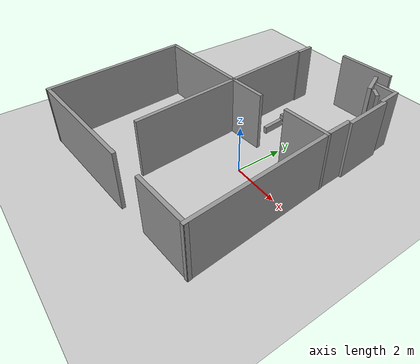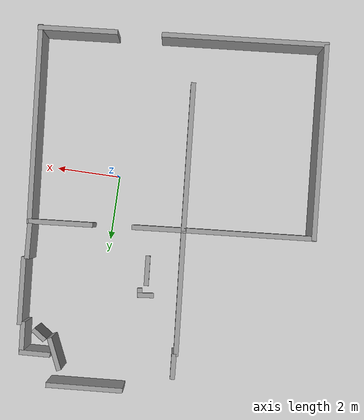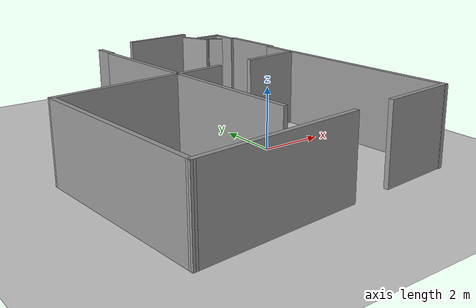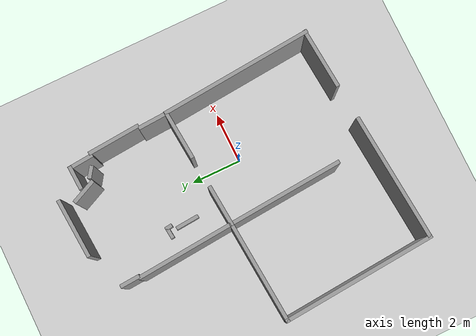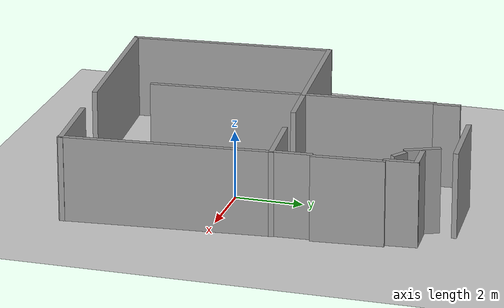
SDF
<sdf version="1.7">
 <world name="default">
  <light name="sun" type="directional">
   <pose>0 0 10 0 -0 0</pose>
   <diffuse>0.8 0.8 0.8 1</diffuse>
   <specular>0.2 0.2 0.2 1</specular>
   <attenuation>
    <range>1000</range>
    <constant>0.9</constant>
    <linear>0.01</linear>
    <quadratic>0.001</quadratic>
   </attenuation>
   <direction>-0.5 0.1 -0.9</direction>
   <spot><inner_angle>0</inner_angle><outer_angle>0</outer_angle><falloff>0</falloff></spot>
  </light>
  <model name="ground_plane">
   <static>1</static>
   <link name="link">
    <collision name="collision">
     <geometry><plane><normal>0 0 1</normal><size>100 100</size></plane></geometry>
     <surface>
      <contact><collide_bitmask>65535</collide_bitmask></contact>
      <friction><ode><mu>100</mu><mu2>50</mu2></ode></friction>
     </surface>
    </collision>
    <visual name="visual">
     <cast_shadows>0</cast_shadows>
     <geometry><plane><normal>0 0 1</normal><size>100 100</size></plane></geometry>
     <material>
      <script><uri>file://media/materials/scripts/gazebo.material</uri><name>Gazebo/Grey</name></script>
     </material>
    </visual>
   </link>
  </model>
  <gravity>0 0 -9.8</gravity>
  <magnetic_field>6e-06 2.3e-05 -4.2e-05</magnetic_field>
  <atmosphere type="adiabatic"/>
  <physics type="ode">
   <max_step_size>0.001</max_step_size>
   <real_time_factor>1</real_time_factor>
   <real_time_update_rate>1000</real_time_update_rate>
  </physics>
  <scene><ambient>0.4 0.4 0.4 1</ambient><background>0.7 0.7 0.7 1</background><shadows>1</shadows></scene>
  <spherical_coordinates>
   <surface_model>EARTH_WGS84</surface_model>
   <latitude_deg>0</latitude_deg>
   <longitude_deg>0</longitude_deg>
   <elevation>0</elevation>
   <heading_deg>0</heading_deg>
  </spherical_coordinates>
  <model name="clf-robocup-sim">
   <link name="Wall_0">
    <pose>0.117126 3.22511 0 0 -0 0.064986</pose>
    <visual name="Wall_0_Visual">
     <pose>0 0 1.25 0 -0 0</pose>
     <geometry><box><size>2.36263 0.15 2.5</size></box></geometry>
     <material>
      <script><uri>file://media/materials/scripts/gazebo.material</uri><name>Gazebo/Grey</name></script>
      <ambient>1 1 1 1</ambient>
      <shader type="pixel"/>
     </material>
     <meta><layer>0</layer></meta>
    </visual>
    <collision name="Wall_0_Collision">
     <pose>0 0 1.25 0 -0 0</pose>
     <geometry><box><size>2.36263 0.15 2.5</size></box></geometry>
     <surface>
      <friction>
       <ode><mu>1</mu><mu2>1</mu2><fdir1>0 0 0</fdir1><slip1>0</slip1><slip2>0</slip2></ode>
       <torsional>
        <coefficient>1</coefficient>
        <patch_radius>0</patch_radius>
        <surface_radius>0</surface_radius>
        <use_patch_radius>1</use_patch_radius>
        <ode><slip>0</slip></ode>
       </torsional>
      </friction>
      <bounce><restitution_coefficient>0</restitution_coefficient><threshold>1e+06</threshold></bounce>
      <contact>
       <collide_without_contact>0</collide_without_contact>
       <collide_without_contact_bitmask>1</collide_without_contact_bitmask>
       <collide_bitmask>1</collide_bitmask>
       <ode>
        <soft_cfm>0</soft_cfm>
        <soft_erp>0.2</soft_erp>
        <kp>1e+13</kp>
        <kd>1</kd>
        <max_vel>0.01</max_vel>
        <min_depth>0</min_depth>
       </ode>
       <bullet>
        <split_impulse>1</split_impulse>
        <split_impulse_penetration_threshold>-0.01</split_impulse_penetration_threshold>
        <soft_cfm>0</soft_cfm>
        <soft_erp>0.2</soft_erp>
        <kp>1e+13</kp>
        <kd>1</kd>
       </bullet>
      </contact>
     </surface>
    </collision>
   </link>
   <link name="Wall_12">
    <pose>1.72111 1.81473 0 0 -0 2.53783</pose>
    <visual name="Wall_12_Visual">
     <pose>0 0 1.25 0 -0 0</pose>
     <geometry><box><size>0.490134 0.15 2.5</size></box></geometry>
     <material>
      <script><uri>file://media/materials/scripts/gazebo.material</uri><name>Gazebo/Grey</name></script>
      <ambient>1 1 1 1</ambient>
      <shader type="pixel"/>
     </material>
     <meta><layer>0</layer></meta>
    </visual>
    <collision name="Wall_12_Collision">
     <pose>0 0 1.25 0 -0 0</pose>
     <geometry><box><size>0.490134 0.15 2.5</size></box></geometry>
     <surface>
      <friction>
       <ode><mu>1</mu><mu2>1</mu2><fdir1>0 0 0</fdir1><slip1>0</slip1><slip2>0</slip2></ode>
       <torsional>
        <coefficient>1</coefficient>
        <patch_radius>0</patch_radius>
        <surface_radius>0</surface_radius>
        <use_patch_radius>1</use_patch_radius>
        <ode><slip>0</slip></ode>
       </torsional>
      </friction>
      <bounce><restitution_coefficient>0</restitution_coefficient><threshold>1e+06</threshold></bounce>
      <contact>
       <collide_without_contact>0</collide_without_contact>
       <collide_without_contact_bitmask>1</collide_without_contact_bitmask>
       <collide_bitmask>1</collide_bitmask>
       <ode>
        <soft_cfm>0</soft_cfm>
        <soft_erp>0.2</soft_erp>
        <kp>1e+13</kp>
        <kd>1</kd>
        <max_vel>0.01</max_vel>
        <min_depth>0</min_depth>
       </ode>
       <bullet>
        <split_impulse>1</split_impulse>
        <split_impulse_penetration_threshold>-0.01</split_impulse_penetration_threshold>
        <soft_cfm>0</soft_cfm>
        <soft_erp>0.2</soft_erp>
        <kp>1e+13</kp>
        <kd>1</kd>
       </bullet>
      </contact>
     </surface>
    </collision>
   </link>
   <link name="Wall_15">
    <pose>1.77147 2.39865 0 0 -0 0.047234</pose>
    <visual name="Wall_15_Visual">
     <pose>0 0 1.25 0 -0 0</pose>
     <geometry><box><size>0.955272 0.15 2.5</size></box></geometry>
     <material>
      <script><uri>file://media/materials/scripts/gazebo.material</uri><name>Gazebo/Grey</name></script>
      <ambient>1 1 1 1</ambient>
      <shader type="pixel"/>
     </material>
     <meta><layer>0</layer></meta>
    </visual>
    <collision name="Wall_15_Collision">
     <pose>0 0 1.25 0 -0 0</pose>
     <geometry><box><size>0.955272 0.15 2.5</size></box></geometry>
     <surface>
      <friction>
       <ode><mu>1</mu><mu2>1</mu2><fdir1>0 0 0</fdir1><slip1>0</slip1><slip2>0</slip2></ode>
       <torsional>
        <coefficient>1</coefficient>
        <patch_radius>0</patch_radius>
        <surface_radius>0</surface_radius>
        <use_patch_radius>1</use_patch_radius>
        <ode><slip>0</slip></ode>
       </torsional>
      </friction>
      <bounce><restitution_coefficient>0</restitution_coefficient><threshold>1e+06</threshold></bounce>
      <contact>
       <collide_without_contact>0</collide_without_contact>
       <collide_without_contact_bitmask>1</collide_without_contact_bitmask>
       <collide_bitmask>1</collide_bitmask>
       <ode>
        <soft_cfm>0</soft_cfm>
        <soft_erp>0.2</soft_erp>
        <kp>1e+13</kp>
        <kd>1</kd>
        <max_vel>0.01</max_vel>
        <min_depth>0</min_depth>
       </ode>
       <bullet>
        <split_impulse>1</split_impulse>
        <split_impulse_penetration_threshold>-0.01</split_impulse_penetration_threshold>
        <soft_cfm>0</soft_cfm>
        <soft_erp>0.2</soft_erp>
        <kp>1e+13</kp>
        <kd>1</kd>
       </bullet>
      </contact>
     </surface>
    </collision>
   </link>
   <link name="Wall_16">
    <pose>2.21901 1.98813 0 0 0 -1.48312</pose>
    <visual name="Wall_16_Visual">
     <pose>0 0 1.25 0 -0 0</pose>
     <geometry><box><size>1.01237 0.15 2.5</size></box></geometry>
     <material>
      <script><uri>file://media/materials/scripts/gazebo.material</uri><name>Gazebo/Grey</name></script>
      <ambient>1 1 1 1</ambient>
      <shader type="pixel"/>
     </material>
     <meta><layer>0</layer></meta>
    </visual>
    <collision name="Wall_16_Collision">
     <pose>0 0 1.25 0 -0 0</pose>
     <geometry><box><size>1.01237 0.15 2.5</size></box></geometry>
     <surface>
      <friction>
       <ode><mu>1</mu><mu2>1</mu2><fdir1>0 0 0</fdir1><slip1>0</slip1><slip2>0</slip2></ode>
       <torsional>
        <coefficient>1</coefficient>
        <patch_radius>0</patch_radius>
        <surface_radius>0</surface_radius>
        <use_patch_radius>1</use_patch_radius>
        <ode><slip>0</slip></ode>
       </torsional>
      </friction>
      <bounce><restitution_coefficient>0</restitution_coefficient><threshold>1e+06</threshold></bounce>
      <contact>
       <collide_without_contact>0</collide_without_contact>
       <collide_without_contact_bitmask>1</collide_without_contact_bitmask>
       <collide_bitmask>1</collide_bitmask>
       <ode>
        <soft_cfm>0</soft_cfm>
        <soft_erp>0.2</soft_erp>
        <kp>1e+13</kp>
        <kd>1</kd>
        <max_vel>0.01</max_vel>
        <min_depth>0</min_depth>
       </ode>
       <bullet>
        <split_impulse>1</split_impulse>
        <split_impulse_penetration_threshold>-0.01</split_impulse_penetration_threshold>
        <soft_cfm>0</soft_cfm>
        <soft_erp>0.2</soft_erp>
        <kp>1e+13</kp>
        <kd>1</kd>
       </bullet>
      </contact>
     </surface>
    </collision>
   </link>
   <link name="Wall_20">
    <pose>2.4415 0.548053 0 0 -0 1.64929</pose>
    <visual name="Wall_20_Visual">
     <pose>0 0 1.25 0 -0 0</pose>
     <geometry><box><size>2.08962 0.15 2.5</size></box></geometry>
     <material>
      <script><uri>file://media/materials/scripts/gazebo.material</uri><name>Gazebo/Grey</name></script>
      <ambient>1 1 1 1</ambient>
      <shader type="pixel"/>
     </material>
     <meta><layer>0</layer></meta>
    </visual>
    <collision name="Wall_20_Collision">
     <pose>0 0 1.25 0 -0 0</pose>
     <geometry><box><size>2.08962 0.15 2.5</size></box></geometry>
     <surface>
      <friction>
       <ode><mu>1</mu><mu2>1</mu2><fdir1>0 0 0</fdir1><slip1>0</slip1><slip2>0</slip2></ode>
       <torsional>
        <coefficient>1</coefficient>
        <patch_radius>0</patch_radius>
        <surface_radius>0</surface_radius>
        <use_patch_radius>1</use_patch_radius>
        <ode><slip>0</slip></ode>
       </torsional>
      </friction>
      <bounce><restitution_coefficient>0</restitution_coefficient><threshold>1e+06</threshold></bounce>
      <contact>
       <collide_without_contact>0</collide_without_contact>
       <collide_without_contact_bitmask>1</collide_without_contact_bitmask>
       <collide_bitmask>1</collide_bitmask>
       <ode>
        <soft_cfm>0</soft_cfm>
        <soft_erp>0.2</soft_erp>
        <kp>1e+13</kp>
        <kd>1</kd>
        <max_vel>0.01</max_vel>
        <min_depth>0</min_depth>
       </ode>
       <bullet>
        <split_impulse>1</split_impulse>
        <split_impulse_penetration_threshold>-0.01</split_impulse_penetration_threshold>
        <soft_cfm>0</soft_cfm>
        <soft_erp>0.2</soft_erp>
        <kp>1e+13</kp>
        <kd>1</kd>
       </bullet>
      </contact>
     </surface>
    </collision>
   </link>
   <link name="Wall_23">
    <pose>2.45364 -0.992646 0 0 -0 1.62579</pose>
    <visual name="Wall_23_Visual">
     <pose>0 0 1.25 0 -0 0</pose>
     <geometry><box><size>1.09926 0.15 2.5</size></box></geometry>
     <material>
      <script><uri>file://media/materials/scripts/gazebo.material</uri><name>Gazebo/Grey</name></script>
      <ambient>1 1 1 1</ambient>
      <shader type="pixel"/>
     </material>
     <meta><layer>0</layer></meta>
    </visual>
    <collision name="Wall_23_Collision">
     <pose>0 0 1.25 0 -0 0</pose>
     <geometry><box><size>1.09926 0.15 2.5</size></box></geometry>
     <surface>
      <friction>
       <ode><mu>1</mu><mu2>1</mu2><fdir1>0 0 0</fdir1><slip1>0</slip1><slip2>0</slip2></ode>
       <torsional>
        <coefficient>1</coefficient>
        <patch_radius>0</patch_radius>
        <surface_radius>0</surface_radius>
        <use_patch_radius>1</use_patch_radius>
        <ode><slip>0</slip></ode>
       </torsional>
      </friction>
      <bounce><restitution_coefficient>0</restitution_coefficient><threshold>1e+06</threshold></bounce>
      <contact>
       <collide_without_contact>0</collide_without_contact>
       <collide_without_contact_bitmask>1</collide_without_contact_bitmask>
       <collide_bitmask>1</collide_bitmask>
       <ode>
        <soft_cfm>0</soft_cfm>
        <soft_erp>0.2</soft_erp>
        <kp>1e+13</kp>
        <kd>1</kd>
        <max_vel>0.01</max_vel>
        <min_depth>0</min_depth>
       </ode>
       <bullet>
        <split_impulse>1</split_impulse>
        <split_impulse_penetration_threshold>-0.01</split_impulse_penetration_threshold>
        <soft_cfm>0</soft_cfm>
        <soft_erp>0.2</soft_erp>
        <kp>1e+13</kp>
        <kd>1</kd>
       </bullet>
      </contact>
     </surface>
    </collision>
   </link>
   <link name="Wall_29">
    <pose>-1.25552 -0.53106 0 0 0 -1.49346</pose>
    <inertial>
     <mass>1</mass>
     <inertia><ixx>1</ixx><ixy>0</ixy><ixz>0</ixz><iyy>1</iyy><iyz>0</iyz><izz>1</izz></inertia>
    </inertial>
    <visual name="Wall_29_Visual">
     <pose>0 0 0.15 0 -0 0</pose>
     <geometry><box><size>0.960591 0.15 0.3</size></box></geometry>
     <material>
      <script><uri>file://media/materials/scripts/gazebo.material</uri><name>Gazebo/Grey</name></script>
      <ambient>1 1 1 1</ambient>
      <shader type="pixel"><normal_map>__default__</normal_map></shader>
      <diffuse>0.7 0.7 0.7 1</diffuse>
      <specular>0.01 0.01 0.01 1</specular>
      <emissive>0 0 0 1</emissive>
     </material>
     <meta><layer>0</layer></meta>
    </visual>
    <collision name="Wall_29_Collision">
     <pose>0 0 0.15 0 -0 0</pose>
     <geometry><box><size>0.960591 0.15 0.3</size></box></geometry>
     <surface>
      <friction>
       <ode><mu>1</mu><mu2>1</mu2><fdir1>0 0 0</fdir1><slip1>0</slip1><slip2>0</slip2></ode>
       <torsional>
        <coefficient>1</coefficient>
        <patch_radius>0</patch_radius>
        <surface_radius>0</surface_radius>
        <use_patch_radius>1</use_patch_radius>
        <ode><slip>0</slip></ode>
       </torsional>
      </friction>
      <bounce><restitution_coefficient>0</restitution_coefficient><threshold>1e+06</threshold></bounce>
      <contact>
       <collide_without_contact>0</collide_without_contact>
       <collide_without_contact_bitmask>1</collide_without_contact_bitmask>
       <collide_bitmask>1</collide_bitmask>
       <ode>
        <soft_cfm>0</soft_cfm>
        <soft_erp>0.2</soft_erp>
        <kp>1e+13</kp>
        <kd>1</kd>
        <max_vel>0.01</max_vel>
        <min_depth>0</min_depth>
       </ode>
       <bullet>
        <split_impulse>1</split_impulse>
        <split_impulse_penetration_threshold>-0.01</split_impulse_penetration_threshold>
        <soft_cfm>0</soft_cfm>
        <soft_erp>0.2</soft_erp>
        <kp>1e+13</kp>
        <kd>1</kd>
       </bullet>
      </contact>
     </surface>
    </collision>
   </link>
   <link name="Wall_32">
    <pose>-1.31486 0.253582 0 0 -0 0.100044</pose>
    <inertial>
     <mass>1</mass>
     <inertia><ixx>1</ixx><ixy>0</ixy><ixz>0</ixz><iyy>1</iyy><iyz>0</iyz><izz>1</izz></inertia>
    </inertial>
    <visual name="Wall_32_Visual">
     <pose>0 0 0.15 0 -0 0</pose>
     <geometry><box><size>0.5264 0.15 0.3</size></box></geometry>
     <material>
      <script><uri>file://media/materials/scripts/gazebo.material</uri><name>Gazebo/Grey</name></script>
      <ambient>1 1 1 1</ambient>
      <shader type="pixel"><normal_map>__default__</normal_map></shader>
      <diffuse>0.7 0.7 0.7 1</diffuse>
      <specular>0.01 0.01 0.01 1</specular>
      <emissive>0 0 0 1</emissive>
     </material>
     <meta><layer>0</layer></meta>
    </visual>
    <collision name="Wall_32_Collision">
     <pose>0 0 0.15 0 -0 0</pose>
     <geometry><box><size>0.5264 0.15 0.3</size></box></geometry>
     <surface>
      <friction>
       <ode><mu>1</mu><mu2>1</mu2><fdir1>0 0 0</fdir1><slip1>0</slip1><slip2>0</slip2></ode>
       <torsional>
        <coefficient>1</coefficient>
        <patch_radius>0</patch_radius>
        <surface_radius>0</surface_radius>
        <use_patch_radius>1</use_patch_radius>
        <ode><slip>0</slip></ode>
       </torsional>
      </friction>
      <bounce><restitution_coefficient>0</restitution_coefficient><threshold>1e+06</threshold></bounce>
      <contact>
       <collide_without_contact>0</collide_without_contact>
       <collide_without_contact_bitmask>1</collide_without_contact_bitmask>
       <collide_bitmask>1</collide_bitmask>
       <ode>
        <soft_cfm>0</soft_cfm>
        <soft_erp>0.2</soft_erp>
        <kp>1e+13</kp>
        <kd>1</kd>
        <max_vel>0.01</max_vel>
        <min_depth>0</min_depth>
       </ode>
       <bullet>
        <split_impulse>1</split_impulse>
        <split_impulse_penetration_threshold>-0.01</split_impulse_penetration_threshold>
        <soft_cfm>0</soft_cfm>
        <soft_erp>0.2</soft_erp>
        <kp>1e+13</kp>
        <kd>1</kd>
       </bullet>
      </contact>
     </surface>
    </collision>
   </link>
   <link name="Wall_33">
    <pose>-1.11907 0.199589 0 0 0 -1.45407</pose>
    <inertial>
     <mass>1</mass>
     <inertia><ixx>1</ixx><ixy>0</ixy><ixz>0</ixz><iyy>1</iyy><iyz>0</iyz><izz>1</izz></inertia>
    </inertial>
    <visual name="Wall_33_Visual">
     <pose>0 0 0.15 0 -0 0</pose>
     <geometry><box><size>0.296576 0.15 0.3</size></box></geometry>
     <material>
      <script><uri>file://media/materials/scripts/gazebo.material</uri><name>Gazebo/Grey</name></script>
      <ambient>1 1 1 1</ambient>
      <shader type="pixel"><normal_map>__default__</normal_map></shader>
      <diffuse>0.7 0.7 0.7 1</diffuse>
      <specular>0.01 0.01 0.01 1</specular>
      <emissive>0 0 0 1</emissive>
     </material>
     <meta><layer>0</layer></meta>
    </visual>
    <collision name="Wall_33_Collision">
     <pose>0 0 0.15 0 -0 0</pose>
     <geometry><box><size>0.296576 0.15 0.3</size></box></geometry>
     <surface>
      <friction>
       <ode><mu>1</mu><mu2>1</mu2><fdir1>0 0 0</fdir1><slip1>0</slip1><slip2>0</slip2></ode>
       <torsional>
        <coefficient>1</coefficient>
        <patch_radius>0</patch_radius>
        <surface_radius>0</surface_radius>
        <use_patch_radius>1</use_patch_radius>
        <ode><slip>0</slip></ode>
       </torsional>
      </friction>
      <bounce><restitution_coefficient>0</restitution_coefficient><threshold>1e+06</threshold></bounce>
      <contact>
       <collide_without_contact>0</collide_without_contact>
       <collide_without_contact_bitmask>1</collide_without_contact_bitmask>
       <collide_bitmask>1</collide_bitmask>
       <ode>
        <soft_cfm>0</soft_cfm>
        <soft_erp>0.2</soft_erp>
        <kp>1e+13</kp>
        <kd>1</kd>
        <max_vel>0.01</max_vel>
        <min_depth>0</min_depth>
       </ode>
       <bullet>
        <split_impulse>1</split_impulse>
        <split_impulse_penetration_threshold>-0.01</split_impulse_penetration_threshold>
        <soft_cfm>0</soft_cfm>
        <soft_erp>0.2</soft_erp>
        <kp>1e+13</kp>
        <kd>1</kd>
       </bullet>
      </contact>
     </surface>
    </collision>
   </link>
   <link name="Wall_5">
    <pose>-2.49567 2.19208 0 0 0 -1.5031</pose>
    <visual name="Wall_5_Visual">
     <pose>0 0 1.25 0 -0 0</pose>
     <geometry><box><size>0.783907 0.15 2.5</size></box></geometry>
     <material>
      <script><uri>file://media/materials/scripts/gazebo.material</uri><name>Gazebo/Grey</name></script>
      <ambient>1 1 1 1</ambient>
      <shader type="pixel"/>
     </material>
     <meta><layer>0</layer></meta>
    </visual>
    <collision name="Wall_5_Collision">
     <pose>0 0 1.25 0 -0 0</pose>
     <geometry><box><size>0.783907 0.15 2.5</size></box></geometry>
     <surface>
      <friction>
       <ode><mu>1</mu><mu2>1</mu2><fdir1>0 0 0</fdir1><slip1>0</slip1><slip2>0</slip2></ode>
       <torsional>
        <coefficient>1</coefficient>
        <patch_radius>0</patch_radius>
        <surface_radius>0</surface_radius>
        <use_patch_radius>1</use_patch_radius>
        <ode><slip>0</slip></ode>
       </torsional>
      </friction>
      <bounce><restitution_coefficient>0</restitution_coefficient><threshold>1e+06</threshold></bounce>
      <contact>
       <collide_without_contact>0</collide_without_contact>
       <collide_without_contact_bitmask>1</collide_without_contact_bitmask>
       <collide_bitmask>1</collide_bitmask>
       <ode>
        <soft_cfm>0</soft_cfm>
        <soft_erp>0.2</soft_erp>
        <kp>1e+13</kp>
        <kd>1</kd>
        <max_vel>0.01</max_vel>
        <min_depth>0</min_depth>
       </ode>
       <bullet>
        <split_impulse>1</split_impulse>
        <split_impulse_penetration_threshold>-0.01</split_impulse_penetration_threshold>
        <soft_cfm>0</soft_cfm>
        <soft_erp>0.2</soft_erp>
        <kp>1e+13</kp>
        <kd>1</kd>
       </bullet>
      </contact>
     </surface>
    </collision>
   </link>
   <link name="Wall_9">
    <pose>1.17611 2.33512 0 0 0 -1.14049</pose>
    <visual name="Wall_9_Visual">
     <pose>0 0 1.25 0 -0 0</pose>
     <geometry><box><size>1.03698 0.15 2.5</size></box></geometry>
     <material>
      <script><uri>file://media/materials/scripts/gazebo.material</uri><name>Gazebo/Grey</name></script>
      <ambient>1 1 1 1</ambient>
      <shader type="pixel"/>
     </material>
     <meta><layer>0</layer></meta>
    </visual>
    <collision name="Wall_9_Collision">
     <pose>0 0 1.25 0 -0 0</pose>
     <geometry><box><size>1.03698 0.15 2.5</size></box></geometry>
     <surface>
      <friction>
       <ode><mu>1</mu><mu2>1</mu2><fdir1>0 0 0</fdir1><slip1>0</slip1><slip2>0</slip2></ode>
       <torsional>
        <coefficient>1</coefficient>
        <patch_radius>0</patch_radius>
        <surface_radius>0</surface_radius>
        <use_patch_radius>1</use_patch_radius>
        <ode><slip>0</slip></ode>
       </torsional>
      </friction>
      <bounce><restitution_coefficient>0</restitution_coefficient><threshold>1e+06</threshold></bounce>
      <contact>
       <collide_without_contact>0</collide_without_contact>
       <collide_without_contact_bitmask>1</collide_without_contact_bitmask>
       <collide_bitmask>1</collide_bitmask>
       <ode>
        <soft_cfm>0</soft_cfm>
        <soft_erp>0.2</soft_erp>
        <kp>1e+13</kp>
        <kd>1</kd>
        <max_vel>0.01</max_vel>
        <min_depth>0</min_depth>
       </ode>
       <bullet>
        <split_impulse>1</split_impulse>
        <split_impulse_penetration_threshold>-0.01</split_impulse_penetration_threshold>
        <soft_cfm>0</soft_cfm>
        <soft_erp>0.2</soft_erp>
        <kp>1e+13</kp>
        <kd>1</kd>
       </bullet>
      </contact>
     </surface>
    </collision>
   </link>
   <static>1</static>
   <pose>-0.048294 3.37667 0 0 -0 0</pose>
  </model>
  <model name="clf-robocup-sim_0">
   <link name="Wall_0">
    <pose>-0.769443 3.14274 0 0 0 -1.49023</pose>
    <visual name="Wall_0_Visual">
     <pose>0 0 1.25 0 -0 0</pose>
     <geometry><box><size>3.92956 0.15 2.5</size></box></geometry>
     <material>
      <script><uri>file://media/materials/scripts/gazebo.material</uri><name>Gazebo/Grey</name></script>
      <ambient>1 1 1 1</ambient>
      <shader type="pixel"/>
     </material>
     <meta><layer>0</layer></meta>
    </visual>
    <collision name="Wall_0_Collision">
     <pose>0 0 1.25 0 -0 0</pose>
     <geometry><box><size>3.92956 0.15 2.5</size></box></geometry>
     <surface>
      <friction>
       <ode><mu>1</mu><mu2>1</mu2><fdir1>0 0 0</fdir1><slip1>0</slip1><slip2>0</slip2></ode>
       <torsional>
        <coefficient>1</coefficient>
        <patch_radius>0</patch_radius>
        <surface_radius>0</surface_radius>
        <use_patch_radius>1</use_patch_radius>
        <ode><slip>0</slip></ode>
       </torsional>
      </friction>
      <bounce><restitution_coefficient>0</restitution_coefficient><threshold>1e+06</threshold></bounce>
      <contact>
       <collide_without_contact>0</collide_without_contact>
       <collide_without_contact_bitmask>1</collide_without_contact_bitmask>
       <collide_bitmask>1</collide_bitmask>
       <ode>
        <soft_cfm>0</soft_cfm>
        <soft_erp>0.2</soft_erp>
        <kp>1e+13</kp>
        <kd>1</kd>
        <max_vel>0.01</max_vel>
        <min_depth>0</min_depth>
       </ode>
       <bullet>
        <split_impulse>1</split_impulse>
        <split_impulse_penetration_threshold>-0.01</split_impulse_penetration_threshold>
        <soft_cfm>0</soft_cfm>
        <soft_erp>0.2</soft_erp>
        <kp>1e+13</kp>
        <kd>1</kd>
       </bullet>
      </contact>
     </surface>
    </collision>
   </link>
   <link name="Wall_1">
    <pose>0.139404 1.30472 0 0 -0 0.080216</pose>
    <visual name="Wall_1_Visual">
     <pose>0 0 1.25 0 -0 0</pose>
     <geometry><box><size>1.6684 0.15 2.5</size></box></geometry>
     <material>
      <script><uri>file://media/materials/scripts/gazebo.material</uri><name>Gazebo/Grey</name></script>
      <ambient>1 1 1 1</ambient>
      <shader type="pixel"/>
     </material>
     <meta><layer>0</layer></meta>
    </visual>
    <collision name="Wall_1_Collision">
     <pose>0 0 1.25 0 -0 0</pose>
     <geometry><box><size>1.6684 0.15 2.5</size></box></geometry>
     <surface>
      <friction>
       <ode><mu>1</mu><mu2>1</mu2><fdir1>0 0 0</fdir1><slip1>0</slip1><slip2>0</slip2></ode>
       <torsional>
        <coefficient>1</coefficient>
        <patch_radius>0</patch_radius>
        <surface_radius>0</surface_radius>
        <use_patch_radius>1</use_patch_radius>
        <ode><slip>0</slip></ode>
       </torsional>
      </friction>
      <bounce><restitution_coefficient>0</restitution_coefficient><threshold>1e+06</threshold></bounce>
      <contact>
       <collide_without_contact>0</collide_without_contact>
       <collide_without_contact_bitmask>1</collide_without_contact_bitmask>
       <collide_bitmask>1</collide_bitmask>
       <ode>
        <soft_cfm>0</soft_cfm>
        <soft_erp>0.2</soft_erp>
        <kp>1e+13</kp>
        <kd>1</kd>
        <max_vel>0.01</max_vel>
        <min_depth>0</min_depth>
       </ode>
       <bullet>
        <split_impulse>1</split_impulse>
        <split_impulse_penetration_threshold>-0.01</split_impulse_penetration_threshold>
        <soft_cfm>0</soft_cfm>
        <soft_erp>0.2</soft_erp>
        <kp>1e+13</kp>
        <kd>1</kd>
       </bullet>
      </contact>
     </surface>
    </collision>
   </link>
   <link name="Wall_11">
    <pose>4.36484 -1.3555 0 0 0 -1.4862</pose>
    <visual name="Wall_11_Visual">
     <pose>0 0 1.25 0 -0 0</pose>
     <geometry><box><size>6.12161 0.15 2.5</size></box></geometry>
     <material>
      <script><uri>file://media/materials/scripts/gazebo.material</uri><name>Gazebo/Grey</name></script>
      <ambient>1 1 1 1</ambient>
      <shader type="pixel"/>
     </material>
     <meta><layer>0</layer></meta>
    </visual>
    <collision name="Wall_11_Collision">
     <pose>0 0 1.25 0 -0 0</pose>
     <geometry><box><size>6.12161 0.15 2.5</size></box></geometry>
     <surface>
      <friction>
       <ode><mu>1</mu><mu2>1</mu2><fdir1>0 0 0</fdir1><slip1>0</slip1><slip2>0</slip2></ode>
       <torsional>
        <coefficient>1</coefficient>
        <patch_radius>0</patch_radius>
        <surface_radius>0</surface_radius>
        <use_patch_radius>1</use_patch_radius>
        <ode><slip>0</slip></ode>
       </torsional>
      </friction>
      <bounce><restitution_coefficient>0</restitution_coefficient><threshold>1e+06</threshold></bounce>
      <contact>
       <collide_without_contact>0</collide_without_contact>
       <collide_without_contact_bitmask>1</collide_without_contact_bitmask>
       <collide_bitmask>1</collide_bitmask>
       <ode>
        <soft_cfm>0</soft_cfm>
        <soft_erp>0.2</soft_erp>
        <kp>1e+13</kp>
        <kd>1</kd>
        <max_vel>0.01</max_vel>
        <min_depth>0</min_depth>
       </ode>
       <bullet>
        <split_impulse>1</split_impulse>
        <split_impulse_penetration_threshold>-0.01</split_impulse_penetration_threshold>
        <soft_cfm>0</soft_cfm>
        <soft_erp>0.2</soft_erp>
        <kp>1e+13</kp>
        <kd>1</kd>
       </bullet>
      </contact>
     </surface>
    </collision>
   </link>
   <link name="Wall_12">
    <pose>2.22876 -4.4996 0 0 0 -3.06134</pose>
    <inertial>
     <mass>1</mass>
     <inertia><ixx>1</ixx><ixy>0</ixy><ixz>0</ixz><iyy>1</iyy><iyz>0</iyz><izz>1</izz></inertia>
    </inertial>
    <visual name="Wall_12_Visual">
     <pose>-1.25 0 1.25 0 -0 0</pose>
     <geometry><box><size>2.46213 0.15 2.5</size></box></geometry>
     <material>
      <script><uri>file://media/materials/scripts/gazebo.material</uri><name>Gazebo/Grey</name></script>
      <ambient>1 1 1 1</ambient>
      <shader type="pixel"><normal_map>__default__</normal_map></shader>
      <diffuse>0.7 0.7 0.7 1</diffuse>
      <specular>0.01 0.01 0.01 1</specular>
      <emissive>0 0 0 1</emissive>
     </material>
     <meta><layer>0</layer></meta>
    </visual>
    <collision name="Wall_12_Collision">
     <pose>-1.25 0 1.25 0 -0 0</pose>
     <geometry><box><size>2.46213 0.15 2.5</size></box></geometry>
     <surface>
      <friction>
       <ode><mu>1</mu><mu2>1</mu2><fdir1>0 0 0</fdir1><slip1>0</slip1><slip2>0</slip2></ode>
       <torsional>
        <coefficient>1</coefficient>
        <patch_radius>0</patch_radius>
        <surface_radius>0</surface_radius>
        <use_patch_radius>1</use_patch_radius>
        <ode><slip>0</slip></ode>
       </torsional>
      </friction>
      <bounce><restitution_coefficient>0</restitution_coefficient><threshold>1e+06</threshold></bounce>
      <contact>
       <collide_without_contact>0</collide_without_contact>
       <collide_without_contact_bitmask>1</collide_without_contact_bitmask>
       <collide_bitmask>1</collide_bitmask>
       <ode>
        <soft_cfm>0</soft_cfm>
        <soft_erp>0.2</soft_erp>
        <kp>1e+13</kp>
        <kd>1</kd>
        <max_vel>0.01</max_vel>
        <min_depth>0</min_depth>
       </ode>
       <bullet>
        <split_impulse>1</split_impulse>
        <split_impulse_penetration_threshold>-0.01</split_impulse_penetration_threshold>
        <soft_cfm>0</soft_cfm>
        <soft_erp>0.2</soft_erp>
        <kp>1e+13</kp>
        <kd>1</kd>
       </bullet>
      </contact>
     </surface>
    </collision>
   </link>
   <link name="Wall_18">
    <pose>-2.6175 1.08977 0 0 0 -3.06469</pose>
    <visual name="Wall_18_Visual">
     <pose>0 0 1.25 0 -0 0</pose>
     <geometry><box><size>4.16214 0.15 2.5</size></box></geometry>
     <material>
      <script><uri>file://media/materials/scripts/gazebo.material</uri><name>Gazebo/Grey</name></script>
      <ambient>1 1 1 1</ambient>
      <shader type="pixel"/>
     </material>
     <meta><layer>0</layer></meta>
    </visual>
    <collision name="Wall_18_Collision">
     <pose>0 0 1.25 0 -0 0</pose>
     <geometry><box><size>4.16214 0.15 2.5</size></box></geometry>
     <surface>
      <friction>
       <ode><mu>1</mu><mu2>1</mu2><fdir1>0 0 0</fdir1><slip1>0</slip1><slip2>0</slip2></ode>
       <torsional>
        <coefficient>1</coefficient>
        <patch_radius>0</patch_radius>
        <surface_radius>0</surface_radius>
        <use_patch_radius>1</use_patch_radius>
        <ode><slip>0</slip></ode>
       </torsional>
      </friction>
      <bounce><restitution_coefficient>0</restitution_coefficient><threshold>1e+06</threshold></bounce>
      <contact>
       <collide_without_contact>0</collide_without_contact>
       <collide_without_contact_bitmask>1</collide_without_contact_bitmask>
       <collide_bitmask>1</collide_bitmask>
       <ode>
        <soft_cfm>0</soft_cfm>
        <soft_erp>0.2</soft_erp>
        <kp>1e+13</kp>
        <kd>1</kd>
        <max_vel>0.01</max_vel>
        <min_depth>0</min_depth>
       </ode>
       <bullet>
        <split_impulse>1</split_impulse>
        <split_impulse_penetration_threshold>-0.01</split_impulse_penetration_threshold>
        <soft_cfm>0</soft_cfm>
        <soft_erp>0.2</soft_erp>
        <kp>1e+13</kp>
        <kd>1</kd>
       </bullet>
      </contact>
     </surface>
    </collision>
   </link>
   <link name="Wall_19">
    <pose>-4.39065 -2.04537 0 0 0 -1.4948</pose>
    <visual name="Wall_19_Visual">
     <pose>0 0 1.25 0 -0 0</pose>
     <geometry><box><size>6.1293 0.15 2.5</size></box></geometry>
     <material>
      <script><uri>file://media/materials/scripts/gazebo.material</uri><name>Gazebo/Grey</name></script>
      <ambient>1 1 1 1</ambient>
      <shader type="pixel"/>
     </material>
     <meta><layer>0</layer></meta>
    </visual>
    <collision name="Wall_19_Collision">
     <pose>0 0 1.25 0 -0 0</pose>
     <geometry><box><size>6.1293 0.15 2.5</size></box></geometry>
     <surface>
      <friction>
       <ode><mu>1</mu><mu2>1</mu2><fdir1>0 0 0</fdir1><slip1>0</slip1><slip2>0</slip2></ode>
       <torsional>
        <coefficient>1</coefficient>
        <patch_radius>0</patch_radius>
        <surface_radius>0</surface_radius>
        <use_patch_radius>1</use_patch_radius>
        <ode><slip>0</slip></ode>
       </torsional>
      </friction>
      <bounce><restitution_coefficient>0</restitution_coefficient><threshold>1e+06</threshold></bounce>
      <contact>
       <collide_without_contact>0</collide_without_contact>
       <collide_without_contact_bitmask>1</collide_without_contact_bitmask>
       <collide_bitmask>1</collide_bitmask>
       <ode>
        <soft_cfm>0</soft_cfm>
        <soft_erp>0.2</soft_erp>
        <kp>1e+13</kp>
        <kd>1</kd>
        <max_vel>0.01</max_vel>
        <min_depth>0</min_depth>
       </ode>
       <bullet>
        <split_impulse>1</split_impulse>
        <split_impulse_penetration_threshold>-0.01</split_impulse_penetration_threshold>
        <soft_cfm>0</soft_cfm>
        <soft_erp>0.2</soft_erp>
        <kp>1e+13</kp>
        <kd>1</kd>
       </bullet>
      </contact>
     </surface>
    </collision>
   </link>
   <link name="Wall_21">
    <pose>-2.16827 -4.86548 0 0 -0 0.080466</pose>
    <inertial>
     <mass>1</mass>
     <inertia><ixx>1</ixx><ixy>0</ixy><ixz>0</ixz><iyy>1</iyy><iyz>0</iyz><izz>1</izz></inertia>
    </inertial>
    <visual name="Wall_21_Visual">
     <pose>0.5 0 1.25 0 -0 0</pose>
     <geometry><box><size>5.15375 0.15 2.5</size></box></geometry>
     <material>
      <script><uri>file://media/materials/scripts/gazebo.material</uri><name>Gazebo/Grey</name></script>
      <ambient>1 1 1 1</ambient>
      <shader type="pixel"><normal_map>__default__</normal_map></shader>
      <diffuse>0.7 0.7 0.7 1</diffuse>
      <specular>0.01 0.01 0.01 1</specular>
      <emissive>0 0 0 1</emissive>
     </material>
     <meta><layer>0</layer></meta>
    </visual>
    <collision name="Wall_21_Collision">
     <pose>0.5 0 1.25 0 -0 0</pose>
     <geometry><box><size>5.15375 0.15 2.5</size></box></geometry>
     <surface>
      <friction>
       <ode><mu>1</mu><mu2>1</mu2><fdir1>0 0 0</fdir1><slip1>0</slip1><slip2>0</slip2></ode>
       <torsional>
        <coefficient>1</coefficient>
        <patch_radius>0</patch_radius>
        <surface_radius>0</surface_radius>
        <use_patch_radius>1</use_patch_radius>
        <ode><slip>0</slip></ode>
       </torsional>
      </friction>
      <bounce><restitution_coefficient>0</restitution_coefficient><threshold>1e+06</threshold></bounce>
      <contact>
       <collide_without_contact>0</collide_without_contact>
       <collide_without_contact_bitmask>1</collide_without_contact_bitmask>
       <collide_bitmask>1</collide_bitmask>
       <ode>
        <soft_cfm>0</soft_cfm>
        <soft_erp>0.2</soft_erp>
        <kp>1e+13</kp>
        <kd>1</kd>
        <max_vel>0.01</max_vel>
        <min_depth>0</min_depth>
       </ode>
       <bullet>
        <split_impulse>1</split_impulse>
        <split_impulse_penetration_threshold>-0.01</split_impulse_penetration_threshold>
        <soft_cfm>0</soft_cfm>
        <soft_erp>0.2</soft_erp>
        <kp>1e+13</kp>
        <kd>1</kd>
       </bullet>
      </contact>
     </surface>
    </collision>
   </link>
   <link name="Wall_5">
    <pose>3.17996 1.55879 0 0 0 -3.06023</pose>
    <visual name="Wall_5_Visual">
     <pose>0 0 1.25 0 -0 0</pose>
     <geometry><box><size>2.0214 0.15 2.5</size></box></geometry>
     <material>
      <script><uri>file://media/materials/scripts/gazebo.material</uri><name>Gazebo/Grey</name></script>
      <ambient>1 1 1 1</ambient>
      <shader type="pixel"/>
     </material>
     <meta><layer>0</layer></meta>
    </visual>
    <collision name="Wall_5_Collision">
     <pose>0 0 1.25 0 -0 0</pose>
     <geometry><box><size>2.0214 0.15 2.5</size></box></geometry>
     <surface>
      <friction>
       <ode><mu>1</mu><mu2>1</mu2><fdir1>0 0 0</fdir1><slip1>0</slip1><slip2>0</slip2></ode>
       <torsional>
        <coefficient>1</coefficient>
        <patch_radius>0</patch_radius>
        <surface_radius>0</surface_radius>
        <use_patch_radius>1</use_patch_radius>
        <ode><slip>0</slip></ode>
       </torsional>
      </friction>
      <bounce><restitution_coefficient>0</restitution_coefficient><threshold>1e+06</threshold></bounce>
      <contact>
       <collide_without_contact>0</collide_without_contact>
       <collide_without_contact_bitmask>1</collide_without_contact_bitmask>
       <collide_bitmask>1</collide_bitmask>
       <ode>
        <soft_cfm>0</soft_cfm>
        <soft_erp>0.2</soft_erp>
        <kp>1e+13</kp>
        <kd>1</kd>
        <max_vel>0.01</max_vel>
        <min_depth>0</min_depth>
       </ode>
       <bullet>
        <split_impulse>1</split_impulse>
        <split_impulse_penetration_threshold>-0.01</split_impulse_penetration_threshold>
        <soft_cfm>0</soft_cfm>
        <soft_erp>0.2</soft_erp>
        <kp>1e+13</kp>
        <kd>1</kd>
       </bullet>
      </contact>
     </surface>
    </collision>
   </link>
   <link name="Wall_8">
    <pose>-0.448509 -0.98888 0 0 0 -1.49532</pose>
    <visual name="Wall_8_Visual">
     <pose>0 0 1.25 0 -0 0</pose>
     <geometry><box><size>4.62827 0.15 2.5</size></box></geometry>
     <material>
      <script><uri>file://media/materials/scripts/gazebo.material</uri><name>Gazebo/Grey</name></script>
      <ambient>1 1 1 1</ambient>
      <shader type="pixel"/>
     </material>
     <meta><layer>0</layer></meta>
    </visual>
    <collision name="Wall_8_Collision">
     <pose>0 0 1.25 0 -0 0</pose>
     <geometry><box><size>4.62827 0.15 2.5</size></box></geometry>
     <surface>
      <friction>
       <ode><mu>1</mu><mu2>1</mu2><fdir1>0 0 0</fdir1><slip1>0</slip1><slip2>0</slip2></ode>
       <torsional>
        <coefficient>1</coefficient>
        <patch_radius>0</patch_radius>
        <surface_radius>0</surface_radius>
        <use_patch_radius>1</use_patch_radius>
        <ode><slip>0</slip></ode>
       </torsional>
      </friction>
      <bounce><restitution_coefficient>0</restitution_coefficient><threshold>1e+06</threshold></bounce>
      <contact>
       <collide_without_contact>0</collide_without_contact>
       <collide_without_contact_bitmask>1</collide_without_contact_bitmask>
       <collide_bitmask>1</collide_bitmask>
       <ode>
        <soft_cfm>0</soft_cfm>
        <soft_erp>0.2</soft_erp>
        <kp>1e+13</kp>
        <kd>1</kd>
        <max_vel>0.01</max_vel>
        <min_depth>0</min_depth>
       </ode>
       <bullet>
        <split_impulse>1</split_impulse>
        <split_impulse_penetration_threshold>-0.01</split_impulse_penetration_threshold>
        <soft_cfm>0</soft_cfm>
        <soft_erp>0.2</soft_erp>
        <kp>1e+13</kp>
        <kd>1</kd>
       </bullet>
      </contact>
     </surface>
    </collision>
   </link>
   <static>1</static>
   <pose>-1.65038 0.14394 0 0 -0 0</pose>
  </model>
 </world>
</sdf>
